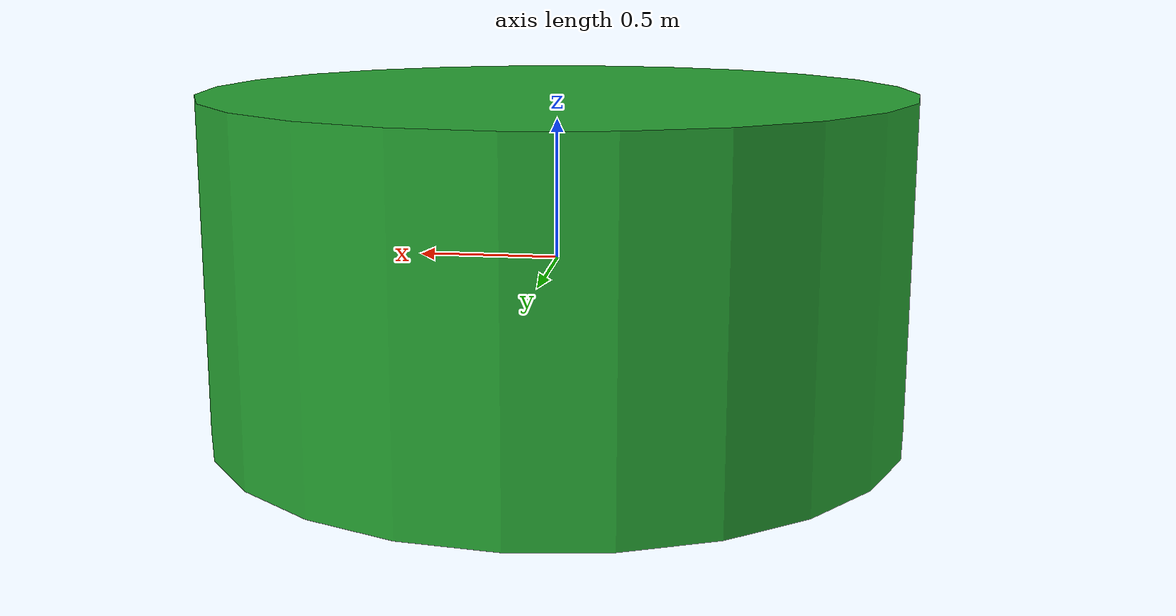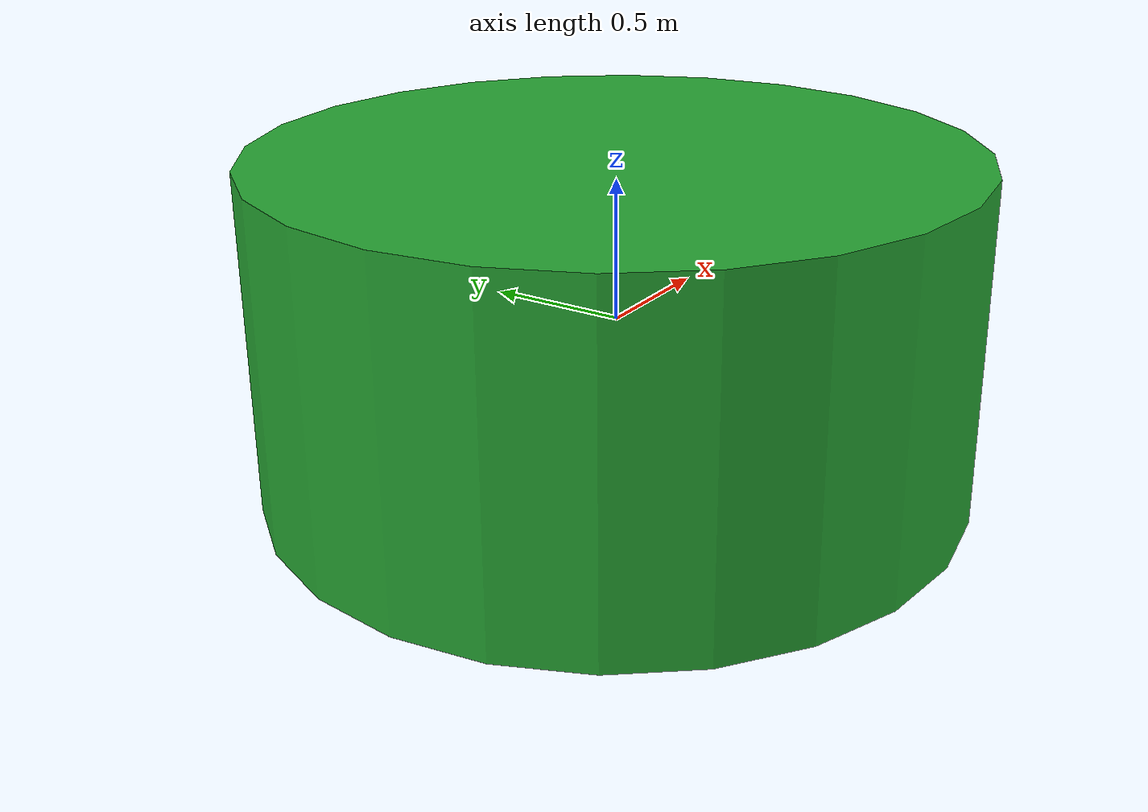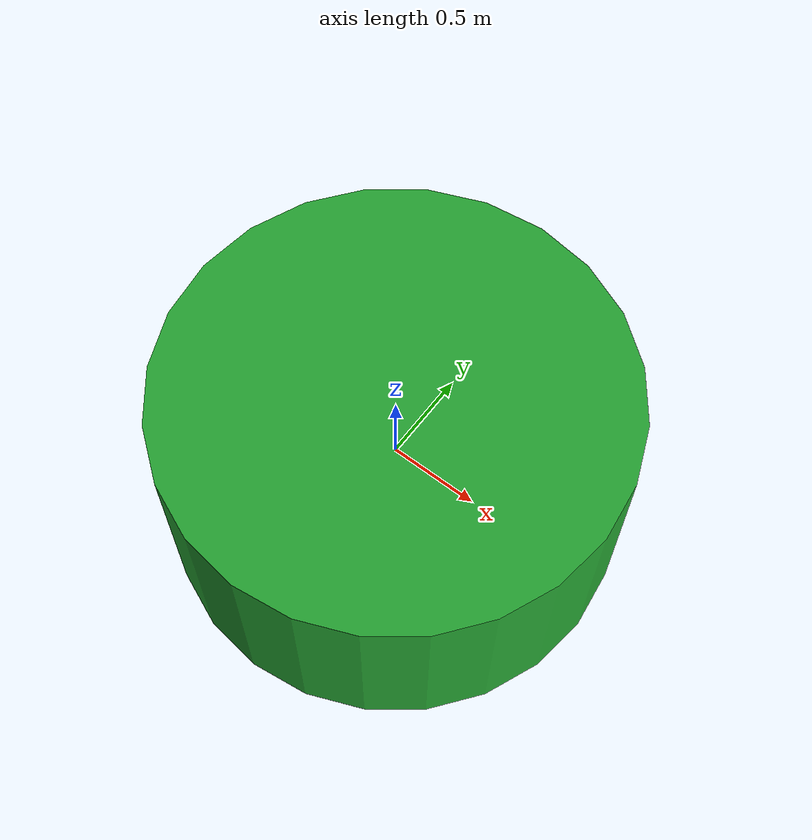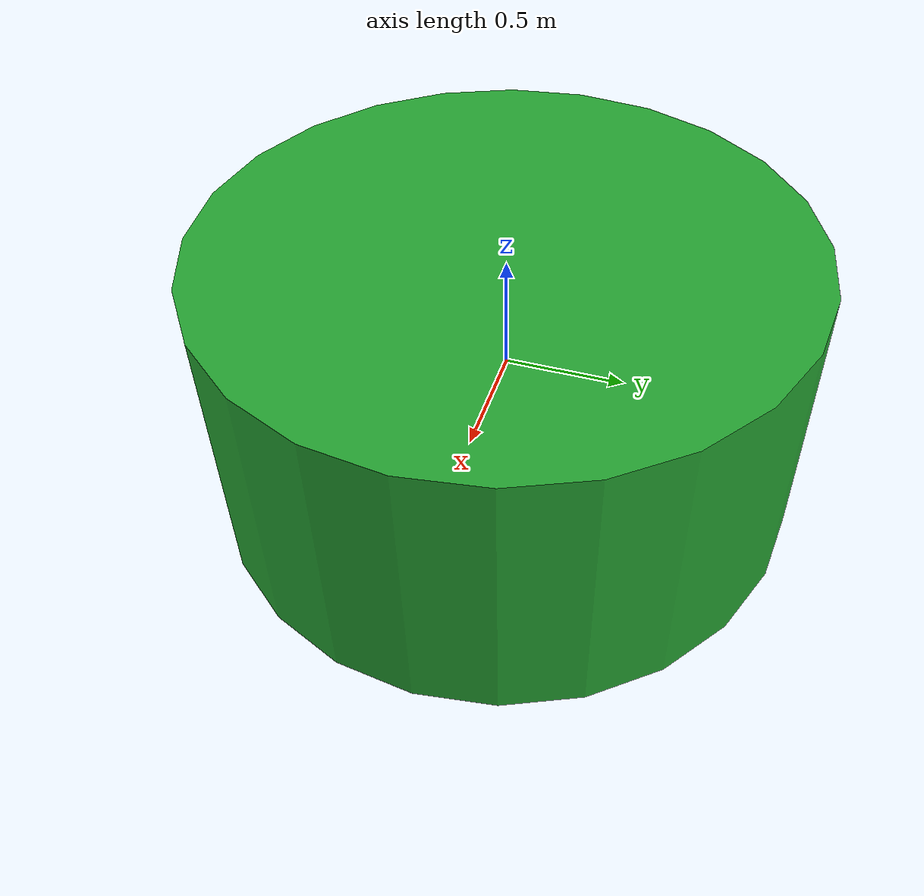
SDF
<?xml version='1.0'?>
<sdf version='1.7'>
  <model name='Circle_1,25x1,2_d0,8'>
    <link name='link'>
      <inertial>
        <mass>4.71239</mass>
        <inertia>
          <ixx>2.40626</ixx>
          <ixy>0</ixy>
          <ixz>0</ixz>
          <iyy>2.40626</iyy>
          <iyz>0</iyz>
          <izz>3.68155</izz>
        </inertia>
        <pose>0 0 0 0 -0 0</pose>
      </inertial>
      <self_collide>0</self_collide>
      <enable_wind>0</enable_wind>
      <kinematic>0</kinematic>
      <pose>0 0 0 0 -0 0</pose>
      <gravity>1</gravity>
      <visual name='visual'>
        <geometry>
          <cylinder>
            <radius>1.25</radius>
            <length>1.2</length>
          </cylinder>
        </geometry>
        <material>
          <script>
            <name>Gazebo/Green</name>
            <uri>file://media/materials/scripts/gazebo.material</uri>
          </script>
          <shader type='normal_map_tangent_space'>
            <normal_map>__default__</normal_map>
          </shader>
          <ambient>0 1 0 1</ambient>
          <diffuse>0 1 0 1</diffuse>
          <specular>0 1 0 1</specular>
          <emissive>0 1 0 1</emissive>
          <lighting>1</lighting>
        </material>
        <pose>0 0 0 0 -0 0</pose>
        <transparency>0</transparency>
        <cast_shadows>1</cast_shadows>
      </visual>
      <collision name='collision'>
        <laser_retro>0</laser_retro>
        <max_contacts>10</max_contacts>
        <pose>0 0 0 0 -0 0</pose>
        <geometry>
          <cylinder>
            <radius>1.25</radius>
            <length>1.2</length>
          </cylinder>
        </geometry>
        <surface>
          <friction>
            <ode>
              <mu>1</mu>
              <mu2>1</mu2>
              <fdir1>0 0 0</fdir1>
              <slip1>0</slip1>
              <slip2>0</slip2>
            </ode>
            <torsional>
              <coefficient>1</coefficient>
              <patch_radius>0</patch_radius>
              <surface_radius>0</surface_radius>
              <use_patch_radius>1</use_patch_radius>
              <ode>
                <slip>0</slip>
              </ode>
            </torsional>
          </friction>
          <bounce>
            <restitution_coefficient>0</restitution_coefficient>
            <threshold>1e+06</threshold>
          </bounce>
          <contact>
            <collide_without_contact>0</collide_without_contact>
            <collide_without_contact_bitmask>1</collide_without_contact_bitmask>
            <collide_bitmask>1</collide_bitmask>
            <ode>
              <soft_cfm>0</soft_cfm>
              <soft_erp>0.2</soft_erp>
              <kp>1e+13</kp>
              <kd>1</kd>
              <max_vel>0.01</max_vel>
              <min_depth>0</min_depth>
            </ode>
            <bullet>
              <split_impulse>1</split_impulse>
              <split_impulse_penetration_threshold>-0.01</split_impulse_penetration_threshold>
              <soft_cfm>0</soft_cfm>
              <soft_erp>0.2</soft_erp>
              <kp>1e+13</kp>
              <kd>1</kd>
            </bullet>
          </contact>
        </surface>
      </collision>
    </link>
    <static>0</static>
    <allow_auto_disable>1</allow_auto_disable>
  </model>
</sdf>
